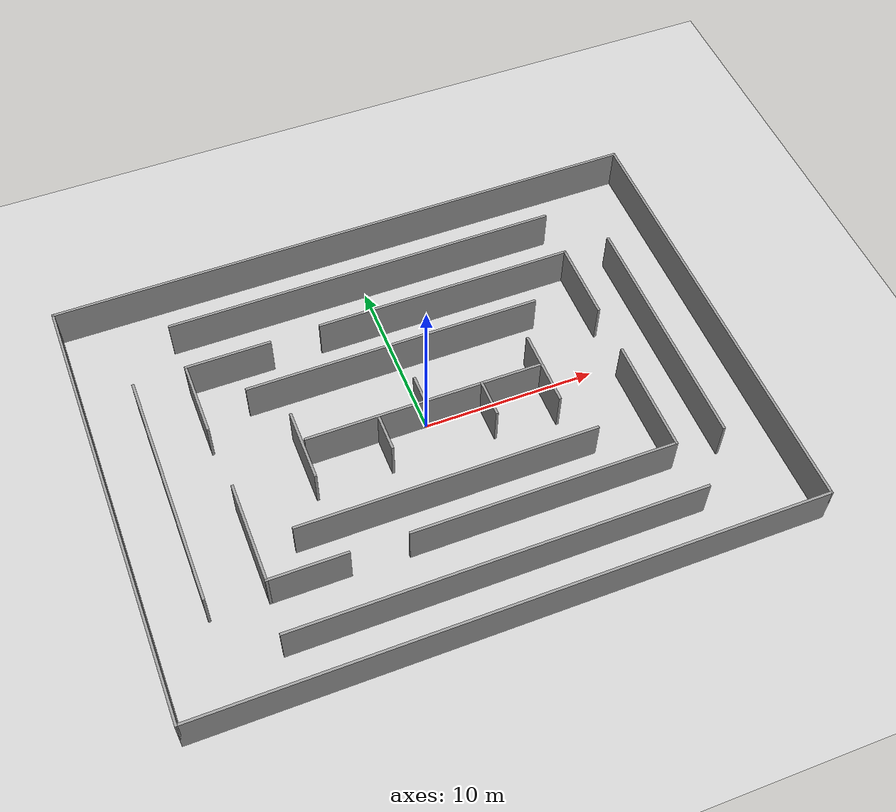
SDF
<sdf version="1.6">
 <world name="default">
  <light name="sun" type="directional">
   <pose>0 0 10 0 -0 0</pose>
   <diffuse>0.8 0.8 0.8 1</diffuse>
   <specular>0.2 0.2 0.2 1</specular>
   <attenuation>
    <range>1000</range>
    <constant>0.9</constant>
    <linear>0.01</linear>
    <quadratic>0.001</quadratic>
   </attenuation>
   <direction>-0.5 0.1 -0.9</direction>
  </light>
  <model name="ground_plane">
   <static>1</static>
   <link name="link">
    <collision name="collision">
     <geometry><plane><normal>0 0 1</normal><size>100 100</size></plane></geometry>
     <surface>
      <contact><collide_bitmask>65535</collide_bitmask></contact>
      <friction><ode><mu>100</mu><mu2>50</mu2></ode></friction>
     </surface>
    </collision>
    <visual name="visual">
     <cast_shadows>0</cast_shadows>
     <geometry><plane><normal>0 0 1</normal><size>100 100</size></plane></geometry>
     <material>
      <script><uri>file://media/materials/scripts/gazebo.material</uri><name>Gazebo/Grey</name></script>
     </material>
    </visual>
   </link>
  </model>
  <gravity>0 0 -9.8</gravity>
  <magnetic_field>6e-06 2.3e-05 -4.2e-05</magnetic_field>
  <atmosphere type="adiabatic"/>
  <physics name="default_physics" default="0" type="ode">
   <max_step_size>0.001</max_step_size>
   <real_time_factor>1</real_time_factor>
   <real_time_update_rate>1000</real_time_update_rate>
  </physics>
  <scene><ambient>0.4 0.4 0.4 1</ambient><background>0.7 0.7 0.7 1</background><shadows>1</shadows></scene>
  <audio><device>default</device></audio>
  <spherical_coordinates>
   <surface_model>EARTH_WGS84</surface_model>
   <latitude_deg>0</latitude_deg>
   <longitude_deg>0</longitude_deg>
   <elevation>0</elevation>
   <heading_deg>0</heading_deg>
  </spherical_coordinates>
  <model name="traffic_model">
   <pose>-0.047805 0.08488 0 0 -0 0</pose>
   <link name="Wall_0">
    <collision name="Wall_0_Collision">
     <geometry><box><size>26.25 0.15 2.5</size></box></geometry>
     <pose>0 0 1.25 0 -0 0</pose>
    </collision>
    <visual name="Wall_0_Visual">
     <pose>0 0 1.25 0 -0 0</pose>
     <geometry><box><size>26.25 0.15 2.5</size></box></geometry>
     <material>
      <script><uri>file://media/materials/scripts/gazebo.material</uri><name>Gazebo/Grey</name></script>
      <ambient>1 1 1 1</ambient>
     </material>
     <meta><layer>0</layer></meta>
    </visual>
    <pose>-17.55 0 0 0 -0 -1.5708</pose>
   </link>
   <link name="Wall_1">
    <collision name="Wall_1_Collision">
     <geometry><box><size>35.25 0.15 2.5</size></box></geometry>
     <pose>0 0 1.25 0 -0 0</pose>
    </collision>
    <visual name="Wall_1_Visual">
     <pose>0 0 1.25 0 -0 0</pose>
     <geometry><box><size>35.25 0.15 2.5</size></box></geometry>
     <material>
      <script><uri>file://media/materials/scripts/gazebo.material</uri><name>Gazebo/Grey</name></script>
      <ambient>1 1 1 1</ambient>
     </material>
     <meta><layer>0</layer></meta>
    </visual>
    <pose>-1e-06 -13.05 0 0 -0 0</pose>
   </link>
   <link name="Wall_11">
    <collision name="Wall_11_Collision">
     <geometry><box><size>23.5 0.15 2.5</size></box></geometry>
     <pose>0 0 1.25 0 -0 0</pose>
    </collision>
    <visual name="Wall_11_Visual">
     <pose>0 0 1.25 0 -0 0</pose>
     <geometry><box><size>23.5 0.15 2.5</size></box></geometry>
     <material>
      <script><uri>file://media/materials/scripts/gazebo.material</uri><name>Gazebo/Grey</name></script>
      <ambient>1 1 1 1</ambient>
     </material>
     <meta><layer>0</layer></meta>
    </visual>
    <pose>0.139177 -10.3921 0 0 -0 0</pose>
   </link>
   <link name="Wall_13">
    <collision name="Wall_13_Collision">
     <geometry><box><size>4.5 0.15 2.5</size></box></geometry>
     <pose>0 0 1.25 0 -0 0</pose>
    </collision>
    <visual name="Wall_13_Visual">
     <pose>0 0 1.25 0 -0 0</pose>
     <geometry><box><size>4.5 0.15 2.5</size></box></geometry>
     <material>
      <script><uri>file://media/materials/scripts/gazebo.material</uri><name>Gazebo/Grey</name></script>
      <ambient>1 1 1 1</ambient>
     </material>
     <meta><layer>0</layer></meta>
    </visual>
    <pose>-11.5259 4.6333 0 0 -0 1.5708</pose>
   </link>
   <link name="Wall_14">
    <collision name="Wall_14_Collision">
     <geometry><box><size>5 0.15 2.5</size></box></geometry>
     <pose>0 0 1.25 0 -0 0</pose>
    </collision>
    <visual name="Wall_14_Visual">
     <pose>0 0 1.25 0 -0 0</pose>
     <geometry><box><size>5 0.15 2.5</size></box></geometry>
     <material>
      <script><uri>file://media/materials/scripts/gazebo.material</uri><name>Gazebo/Grey</name></script>
      <ambient>1 1 1 1</ambient>
     </material>
     <meta><layer>0</layer></meta>
    </visual>
    <pose>-9.10092 6.8083 0 0 -0 0</pose>
   </link>
   <link name="Wall_16">
    <collision name="Wall_16_Collision">
     <geometry><box><size>15.25 0.15 2.5</size></box></geometry>
     <pose>0 0 1.25 0 -0 0</pose>
    </collision>
    <visual name="Wall_16_Visual">
     <pose>0 0 1.25 0 -0 0</pose>
     <geometry><box><size>15.25 0.15 2.5</size></box></geometry>
     <material>
      <script><uri>file://media/materials/scripts/gazebo.material</uri><name>Gazebo/Grey</name></script>
      <ambient>1 1 1 1</ambient>
     </material>
     <meta><layer>0</layer></meta>
    </visual>
    <pose>3.89469 6.91238 0 0 -0 0</pose>
   </link>
   <link name="Wall_17">
    <collision name="Wall_17_Collision">
     <geometry><box><size>4.75 0.15 2.5</size></box></geometry>
     <pose>0 0 1.25 0 -0 0</pose>
    </collision>
    <visual name="Wall_17_Visual">
     <pose>0 0 1.25 0 -0 0</pose>
     <geometry><box><size>4.75 0.15 2.5</size></box></geometry>
     <material>
      <script><uri>file://media/materials/scripts/gazebo.material</uri><name>Gazebo/Grey</name></script>
      <ambient>1 1 1 1</ambient>
     </material>
     <meta><layer>0</layer></meta>
    </visual>
    <pose>11.4447 4.61238 0 0 -0 -1.5708</pose>
   </link>
   <link name="Wall_19">
    <collision name="Wall_19_Collision">
     <geometry><box><size>6.75 0.15 2.5</size></box></geometry>
     <pose>0 0 1.25 0 -0 0</pose>
    </collision>
    <visual name="Wall_19_Visual">
     <pose>0 0 1.25 0 -0 0</pose>
     <geometry><box><size>6.75 0.15 2.5</size></box></geometry>
     <material>
      <script><uri>file://media/materials/scripts/gazebo.material</uri><name>Gazebo/Grey</name></script>
      <ambient>1 1 1 1</ambient>
     </material>
     <meta><layer>0</layer></meta>
    </visual>
    <pose>11.4491 -4.09377 0 0 -0 -1.5708</pose>
   </link>
   <link name="Wall_2">
    <collision name="Wall_2_Collision">
     <geometry><box><size>26.25 0.15 2.5</size></box></geometry>
     <pose>0 0 1.25 0 -0 0</pose>
    </collision>
    <visual name="Wall_2_Visual">
     <pose>0 0 1.25 0 -0 0</pose>
     <geometry><box><size>26.25 0.15 2.5</size></box></geometry>
     <material>
      <script><uri>file://media/materials/scripts/gazebo.material</uri><name>Gazebo/Grey</name></script>
      <ambient>1 1 1 1</ambient>
     </material>
     <meta><layer>0</layer></meta>
    </visual>
    <pose>17.55 0 0 0 -0 1.5708</pose>
   </link>
   <link name="Wall_20">
    <collision name="Wall_20_Collision">
     <geometry><box><size>15.25 0.15 2.5</size></box></geometry>
     <pose>0 0 1.25 0 -0 0</pose>
    </collision>
    <visual name="Wall_20_Visual">
     <pose>0 0 1.25 0 -0 0</pose>
     <geometry><box><size>15.25 0.15 2.5</size></box></geometry>
     <material>
      <script><uri>file://media/materials/scripts/gazebo.material</uri><name>Gazebo/Grey</name></script>
      <ambient>1 1 1 1</ambient>
     </material>
     <meta><layer>0</layer></meta>
    </visual>
    <pose>3.89907 -7.39377 0 0 -0 3.14159</pose>
   </link>
   <link name="Wall_22">
    <collision name="Wall_22_Collision">
     <geometry><box><size>4.5 0.15 2.5</size></box></geometry>
     <pose>0 0 1.25 0 -0 0</pose>
    </collision>
    <visual name="Wall_22_Visual">
     <pose>0 0 1.25 0 -0 0</pose>
     <geometry><box><size>4.5 0.15 2.5</size></box></geometry>
     <material>
      <script><uri>file://media/materials/scripts/gazebo.material</uri><name>Gazebo/Grey</name></script>
      <ambient>1 1 1 1</ambient>
     </material>
     <meta><layer>0</layer></meta>
    </visual>
    <pose>-9.15034 -7.32773 0 0 -0 3.14159</pose>
   </link>
   <link name="Wall_23">
    <collision name="Wall_23_Collision">
     <geometry><box><size>6 0.15 2.5</size></box></geometry>
     <pose>0 0 1.25 0 -0 0</pose>
    </collision>
    <visual name="Wall_23_Visual">
     <pose>0 0 1.25 0 -0 0</pose>
     <geometry><box><size>6 0.15 2.5</size></box></geometry>
     <material>
      <script><uri>file://media/materials/scripts/gazebo.material</uri><name>Gazebo/Grey</name></script>
      <ambient>1 1 1 1</ambient>
     </material>
     <meta><layer>0</layer></meta>
    </visual>
    <pose>-11.3253 -4.40273 0 0 -0 1.5708</pose>
   </link>
   <link name="Wall_25">
    <collision name="Wall_25_Collision">
     <geometry><box><size>17.25 0.15 2.5</size></box></geometry>
     <pose>0 0 1.25 0 -0 0</pose>
    </collision>
    <visual name="Wall_25_Visual">
     <pose>0 0 1.25 0 -0 0</pose>
     <geometry><box><size>17.25 0.15 2.5</size></box></geometry>
     <material>
      <script><uri>file://media/materials/scripts/gazebo.material</uri><name>Gazebo/Grey</name></script>
      <ambient>1 1 1 1</ambient>
     </material>
     <meta><layer>0</layer></meta>
    </visual>
    <pose>-0.263042 4.18999 0 0 -0 0</pose>
   </link>
   <link name="Wall_27">
    <collision name="Wall_27_Collision">
     <geometry><box><size>17.25 0.15 2.5</size></box></geometry>
     <pose>0 0 1.25 0 -0 0</pose>
    </collision>
    <visual name="Wall_27_Visual">
     <pose>0 0 1.25 0 -0 0</pose>
     <geometry><box><size>17.25 0.15 2.5</size></box></geometry>
     <material>
      <script><uri>file://media/materials/scripts/gazebo.material</uri><name>Gazebo/Grey</name></script>
      <ambient>1 1 1 1</ambient>
     </material>
     <meta><layer>0</layer></meta>
    </visual>
    <pose>-0.570681 -4.97767 0 0 -0 0</pose>
   </link>
   <link name="Wall_29">
    <collision name="Wall_29_Collision">
     <geometry><box><size>4.25 0.15 2.5</size></box></geometry>
     <pose>0 0 1.25 0 -0 0</pose>
    </collision>
    <visual name="Wall_29_Visual">
     <pose>0 0 1.25 0 -0 0</pose>
     <geometry><box><size>4.25 0.15 2.5</size></box></geometry>
     <material>
      <script><uri>file://media/materials/scripts/gazebo.material</uri><name>Gazebo/Grey</name></script>
      <ambient>1 1 1 1</ambient>
     </material>
     <meta><layer>0</layer></meta>
    </visual>
    <pose>-7.09026 -0.328906 0 0 -0 -1.5708</pose>
   </link>
   <link name="Wall_3">
    <collision name="Wall_3_Collision">
     <geometry><box><size>35.25 0.15 2.5</size></box></geometry>
     <pose>0 0 1.25 0 -0 0</pose>
    </collision>
    <visual name="Wall_3_Visual">
     <pose>0 0 1.25 0 -0 0</pose>
     <geometry><box><size>35.25 0.15 2.5</size></box></geometry>
     <material>
      <script><uri>file://media/materials/scripts/gazebo.material</uri><name>Gazebo/Grey</name></script>
      <ambient>1 1 1 1</ambient>
     </material>
     <meta><layer>0</layer></meta>
    </visual>
    <pose>-1e-06 13.05 0 0 -0 3.14159</pose>
   </link>
   <link name="Wall_31">
    <collision name="Wall_31_Collision">
     <geometry><box><size>4.5 0.15 2.5</size></box></geometry>
     <pose>0 0 1.25 0 -0 0</pose>
    </collision>
    <visual name="Wall_31_Visual">
     <pose>0 0 1.25 0 -0 0</pose>
     <geometry><box><size>4.5 0.15 2.5</size></box></geometry>
     <material>
      <script><uri>file://media/materials/scripts/gazebo.material</uri><name>Gazebo/Grey</name></script>
      <ambient>1 1 1 1</ambient>
     </material>
     <meta><layer>0</layer></meta>
    </visual>
    <pose>6.87657 -0.33085 0 0 -0 -1.5708</pose>
   </link>
   <link name="Wall_33">
    <collision name="Wall_33_Collision">
     <geometry><box><size>13.75 0.15 2.5</size></box></geometry>
     <pose>0 0 1.25 0 -0 0</pose>
    </collision>
    <visual name="Wall_33_Visual">
     <pose>0 0 1.25 0 -0 0</pose>
     <geometry><box><size>13.75 0.15 2.5</size></box></geometry>
     <material>
      <script><uri>file://media/materials/scripts/gazebo.material</uri><name>Gazebo/Grey</name></script>
      <ambient>1 1 1 1</ambient>
     </material>
     <meta><layer>0</layer></meta>
    </visual>
    <pose>-0.04415 -0.055437 0 0 -0 0</pose>
   </link>
   <link name="Wall_35">
    <collision name="Wall_35_Collision">
     <geometry><box><size>1.75 0.15 2.5</size></box></geometry>
     <pose>0 0 1.25 0 -0 0</pose>
    </collision>
    <visual name="Wall_35_Visual">
     <pose>0 0 1.25 0 -0 0</pose>
     <geometry><box><size>1.75 0.15 2.5</size></box></geometry>
     <material>
      <script><uri>file://media/materials/scripts/gazebo.material</uri><name>Gazebo/Grey</name></script>
      <ambient>1 1 1 1</ambient>
     </material>
     <meta><layer>0</layer></meta>
    </visual>
    <pose>-0.014556 0.744563 0 0 -0 1.5708</pose>
   </link>
   <link name="Wall_37">
    <collision name="Wall_37_Collision">
     <geometry><box><size>2.25 0.15 2.5</size></box></geometry>
     <pose>0 0 1.25 0 -0 0</pose>
    </collision>
    <visual name="Wall_37_Visual">
     <pose>0 0 1.25 0 -0 0</pose>
     <geometry><box><size>2.25 0.15 2.5</size></box></geometry>
     <material>
      <script><uri>file://media/materials/scripts/gazebo.material</uri><name>Gazebo/Grey</name></script>
      <ambient>1 1 1 1</ambient>
     </material>
     <meta><layer>0</layer></meta>
    </visual>
    <pose>-2.72178 -1.15891 0 0 -0 1.5708</pose>
   </link>
   <link name="Wall_39">
    <collision name="Wall_39_Collision">
     <geometry><box><size>2.25 0.15 2.5</size></box></geometry>
     <pose>0 0 1.25 0 -0 0</pose>
    </collision>
    <visual name="Wall_39_Visual">
     <pose>0 0 1.25 0 -0 0</pose>
     <geometry><box><size>2.25 0.15 2.5</size></box></geometry>
     <material>
      <script><uri>file://media/materials/scripts/gazebo.material</uri><name>Gazebo/Grey</name></script>
      <ambient>1 1 1 1</ambient>
     </material>
     <meta><layer>0</layer></meta>
    </visual>
    <pose>3.30795 -1.09739 0 0 -0 1.5708</pose>
   </link>
   <link name="Wall_5">
    <collision name="Wall_5_Collision">
     <geometry><box><size>23.25 0.15 2.5</size></box></geometry>
     <pose>0 0 1.25 0 -0 0</pose>
    </collision>
    <visual name="Wall_5_Visual">
     <pose>0 0 1.25 0 -0 0</pose>
     <geometry><box><size>23.25 0.15 2.5</size></box></geometry>
     <material>
      <script><uri>file://media/materials/scripts/gazebo.material</uri><name>Gazebo/Grey</name></script>
      <ambient>1 1 1 1</ambient>
     </material>
     <meta><layer>0</layer></meta>
    </visual>
    <pose>-0.04735 9.91208 0 0 -0 0</pose>
   </link>
   <link name="Wall_7">
    <collision name="Wall_7_Collision">
     <geometry><box><size>14.5 0.15 2.5</size></box></geometry>
     <pose>0 0 1.25 0 -0 0</pose>
    </collision>
    <visual name="Wall_7_Visual">
     <pose>0 0 1.25 0 -0 0</pose>
     <geometry><box><size>14.5 0.15 2.5</size></box></geometry>
     <material>
      <script><uri>file://media/materials/scripts/gazebo.material</uri><name>Gazebo/Grey</name></script>
      <ambient>1 1 1 1</ambient>
     </material>
     <meta><layer>0</layer></meta>
    </visual>
    <pose>14.2599 -0.266122 0 0 -0 -1.5708</pose>
   </link>
   <link name="Wall_9">
    <collision name="Wall_9_Collision">
     <geometry><box><size>14 0.15 2.5</size></box></geometry>
     <pose>0 0 1.25 0 -0 0</pose>
    </collision>
    <visual name="Wall_9_Visual">
     <pose>0 0 1.25 0 -0 0</pose>
     <geometry><box><size>14 0.15 2.5</size></box></geometry>
     <material>
      <script><uri>file://media/materials/scripts/gazebo.material</uri><name>Gazebo/Grey</name></script>
      <ambient>1 1 1 1</ambient>
     </material>
     <meta><layer>0</layer></meta>
    </visual>
    <pose>-14.5351 -0.262233 0 0 -0 -1.5708</pose>
   </link>
   <static>1</static>
  </model>
 </world>
</sdf>
